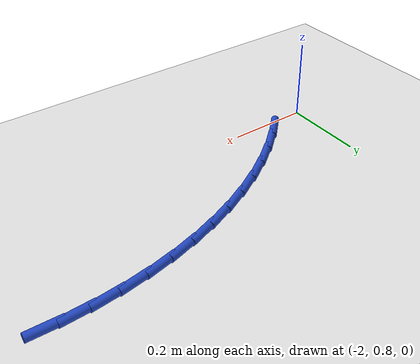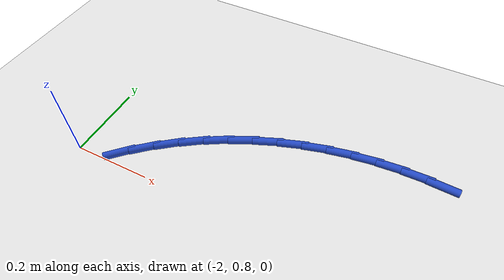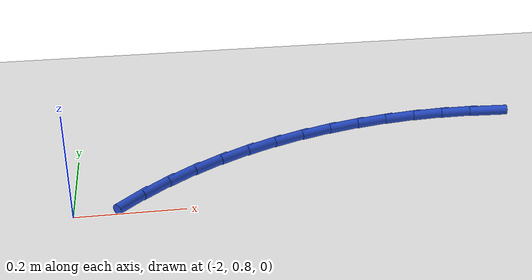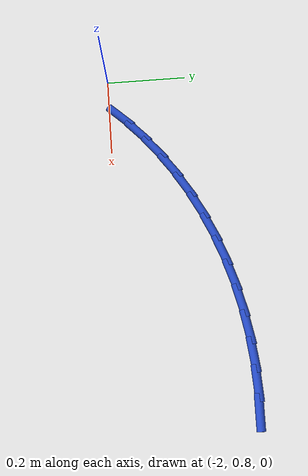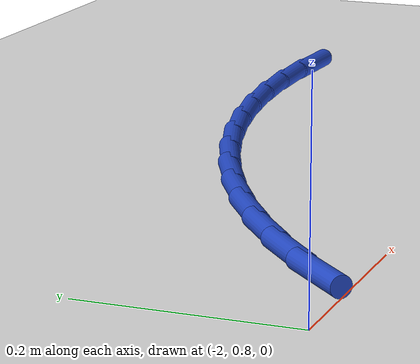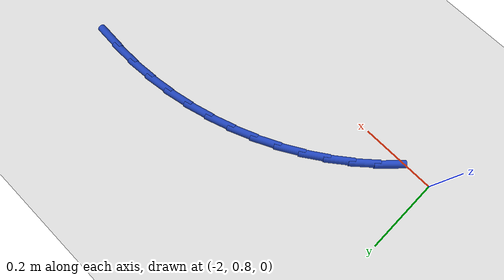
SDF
<sdf version="1.6">
 <world name="default">
  <model name="ground_plane">
   <static>1</static>
   <link name="link">
    <collision name="collision">
     <geometry><plane><normal>0 0 1</normal><size>100 100</size></plane></geometry>
     <surface><friction><ode><mu>100</mu><mu2>50</mu2></ode></friction></surface>
    </collision>
    <visual name="visual">
     <cast_shadows>0</cast_shadows>
     <geometry><plane><normal>0 0 1</normal><size>100 100</size></plane></geometry>
     <material>
      <script><uri>file://media/materials/scripts/gazebo.material</uri><name>Gazebo/WhiteGlow</name></script>
     </material>
    </visual>
   </link>
  </model>
  <model name="line">
   <link name="link_28">
    <pose>-1.152559041932752 1.0875850447230009 0.01 0 1.57 -0.047481467585647655</pose>
    <collision name="collision">
     <geometry><cylinder><radius>0.01</radius><length>0.08</length></cylinder></geometry>
    </collision>
    <visual name="visual">
     <material>
      <script><name>Gazebo/Blue</name><uri>file://media/materials/scripts/gazebo.material</uri></script>
     </material>
     <geometry><cylinder><radius>0.01</radius><length>0.08</length></cylinder></geometry>
    </visual>
   </link>
   <link name="link_29">
    <pose>-1.2138909055333005 1.090499362045283 0.01 0 1.57 0.017703231686513273</pose>
    <collision name="collision">
     <geometry><cylinder><radius>0.01</radius><length>0.08</length></cylinder></geometry>
    </collision>
    <visual name="visual">
     <material>
      <script><name>Gazebo/Blue</name><uri>file://media/materials/scripts/gazebo.material</uri></script>
     </material>
     <geometry><cylinder><radius>0.01</radius><length>0.08</length></cylinder></geometry>
    </visual>
   </link>
   <link name="link_30">
    <pose>-1.2756193871057915 1.089406454257922 0.01 0 1.57 0.08150146032755028</pose>
    <collision name="collision">
     <geometry><cylinder><radius>0.01</radius><length>0.08</length></cylinder></geometry>
    </collision>
    <visual name="visual">
     <material>
      <script><name>Gazebo/Blue</name><uri>file://media/materials/scripts/gazebo.material</uri></script>
     </material>
     <geometry><cylinder><radius>0.01</radius><length>0.08</length></cylinder></geometry>
    </visual>
   </link>
   <link name="link_31">
    <pose>-1.337441426121946 1.0843566818255712 0.01 0 1.57 0.1443277324611267</pose>
    <collision name="collision">
     <geometry><cylinder><radius>0.01</radius><length>0.08</length></cylinder></geometry>
    </collision>
    <visual name="visual">
     <material>
      <script><name>Gazebo/Blue</name><uri>file://media/materials/scripts/gazebo.material</uri></script>
     </material>
     <geometry><cylinder><radius>0.01</radius><length>0.08</length></cylinder></geometry>
    </visual>
   </link>
   <link name="link_32">
    <pose>-1.3990522406357753 1.0754022712245868 0.01 0 1.57 0.20663023334645886</pose>
    <collision name="collision">
     <geometry><cylinder><radius>0.01</radius><length>0.08</length></cylinder></geometry>
    </collision>
    <visual name="visual">
     <material>
      <script><name>Gazebo/Blue</name><uri>file://media/materials/scripts/gazebo.material</uri></script>
     </material>
     <geometry><cylinder><radius>0.01</radius><length>0.08</length></cylinder></geometry>
    </visual>
   </link>
   <link name="link_33">
    <pose>-1.4601470487012889 1.0625954489313247 0.01 0 1.57 0.26885436073527125</pose>
    <collision name="collision">
     <geometry><cylinder><radius>0.01</radius><length>0.08</length></cylinder></geometry>
    </collision>
    <visual name="visual">
     <material>
      <script><name>Gazebo/Blue</name><uri>file://media/materials/scripts/gazebo.material</uri></script>
     </material>
     <geometry><cylinder><radius>0.01</radius><length>0.08</length></cylinder></geometry>
    </visual>
   </link>
   <link name="link_34">
    <pose>-1.5204210683724988 1.0459884414221428 0.01 0 1.57 0.3314390599908926</pose>
    <collision name="collision">
     <geometry><cylinder><radius>0.01</radius><length>0.08</length></cylinder></geometry>
    </collision>
    <visual name="visual">
     <material>
      <script><name>Gazebo/Blue</name><uri>file://media/materials/scripts/gazebo.material</uri></script>
     </material>
     <geometry><cylinder><radius>0.01</radius><length>0.08</length></cylinder></geometry>
    </visual>
   </link>
   <link name="link_35">
    <pose>-1.5795695177034157 1.0256334751733958 0.01 0 1.57 0.3948131366345928</pose>
    <collision name="collision">
     <geometry><cylinder><radius>0.01</radius><length>0.08</length></cylinder></geometry>
    </collision>
    <visual name="visual">
     <material>
      <script><name>Gazebo/Blue</name><uri>file://media/materials/scripts/gazebo.material</uri></script>
     </material>
     <geometry><cylinder><radius>0.01</radius><length>0.08</length></cylinder></geometry>
    </visual>
   </link>
   <link name="link_36">
    <pose>-1.6372876147480495 1.0015827766614411 0.01 0 1.57 0.459390484055084</pose>
    <collision name="collision">
     <geometry><cylinder><radius>0.01</radius><length>0.08</length></cylinder></geometry>
    </collision>
    <visual name="visual">
     <material>
      <script><name>Gazebo/Blue</name><uri>file://media/materials/scripts/gazebo.material</uri></script>
     </material>
     <geometry><cylinder><radius>0.01</radius><length>0.08</length></cylinder></geometry>
    </visual>
   </link>
   <link name="link_37">
    <pose>-1.6932705775604113 0.9738885723626347 0.01 0 1.57 0.5255632155695324</pose>
    <collision name="collision">
     <geometry><cylinder><radius>0.01</radius><length>0.08</length></cylinder></geometry>
    </collision>
    <visual name="visual">
     <material>
      <script><name>Gazebo/Blue</name><uri>file://media/materials/scripts/gazebo.material</uri></script>
     </material>
     <geometry><cylinder><radius>0.01</radius><length>0.08</length></cylinder></geometry>
    </visual>
   </link>
   <link name="link_38">
    <pose>-1.7472136241945124 0.9426030887533333 0.01 0 1.57 0.5931548154548317</pose>
    <collision name="collision">
     <geometry><cylinder><radius>0.01</radius><length>0.08</length></cylinder></geometry>
    </collision>
    <visual name="visual">
     <material>
      <script><name>Gazebo/Blue</name><uri>file://media/materials/scripts/gazebo.material</uri></script>
     </material>
     <geometry><cylinder><radius>0.01</radius><length>0.08</length></cylinder></geometry>
    </visual>
   </link>
   <link name="link_39">
    <pose>-1.7988382614001377 0.9078011414629727 0.01 0 1.57 0.6599861570160778</pose>
    <collision name="collision">
     <geometry><cylinder><radius>0.01</radius><length>0.08</length></cylinder></geometry>
    </collision>
    <visual name="visual">
     <material>
      <script><name>Gazebo/Blue</name><uri>file://media/materials/scripts/gazebo.material</uri></script>
     </material>
     <geometry><cylinder><radius>0.01</radius><length>0.08</length></cylinder></geometry>
    </visual>
   </link>
   <link name="link_40">
    <pose>-1.8479846350993494 0.8696594894979757 0.01 0 1.57 0.7255062978100346</pose>
    <collision name="collision">
     <geometry><cylinder><radius>0.01</radius><length>0.08</length></cylinder></geometry>
    </collision>
    <visual name="visual">
     <material>
      <script><name>Gazebo/Blue</name><uri>file://media/materials/scripts/gazebo.material</uri></script>
     </material>
     <geometry><cylinder><radius>0.01</radius><length>0.08</length></cylinder></geometry>
    </visual>
   </link>
   <link name="link_41">
    <pose>-1.8945263434804724 0.8283836364768951 0.01 0 1.57 0.7898735611415052</pose>
    <collision name="collision">
     <geometry><cylinder><radius>0.01</radius><length>0.08</length></cylinder></geometry>
    </collision>
    <visual name="visual">
     <material>
      <script><name>Gazebo/Blue</name><uri>file://media/materials/scripts/gazebo.material</uri></script>
     </material>
     <geometry><cylinder><radius>0.01</radius><length>0.08</length></cylinder></geometry>
    </visual>
   </link>
  </model>
 </world>
</sdf>
